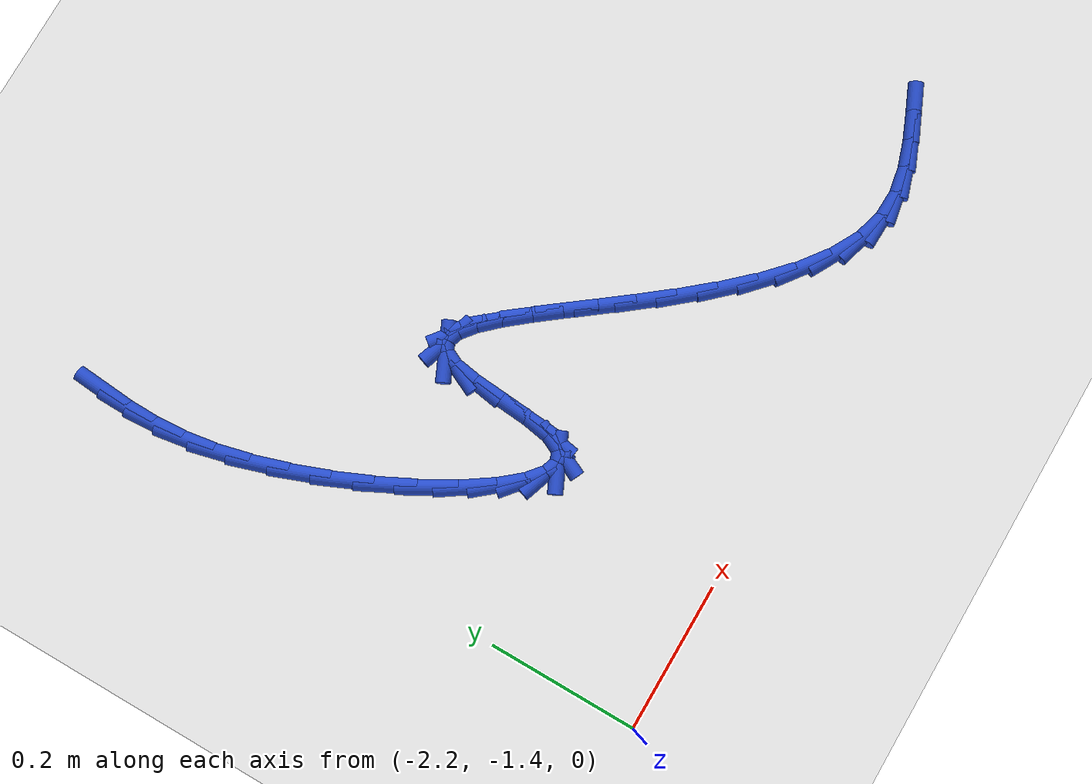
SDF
<sdf version="1.6">
 <world name="default">
  <model name="ground_plane">
   <static>1</static>
   <link name="link">
    <collision name="collision">
     <geometry><plane><normal>0 0 1</normal><size>100 100</size></plane></geometry>
     <surface><friction><ode><mu>100</mu><mu2>50</mu2></ode></friction></surface>
    </collision>
    <visual name="visual">
     <cast_shadows>0</cast_shadows>
     <geometry><plane><normal>0 0 1</normal><size>100 100</size></plane></geometry>
     <material>
      <script><uri>file://media/materials/scripts/gazebo.material</uri><name>Gazebo/WhiteGlow</name></script>
     </material>
    </visual>
   </link>
  </model>
  <model name="line">
   <link name="link_141">
    <pose>-2.172137675861249 -0.6205186769852667 0.01 0 1.57 1.4902348480147125</pose>
    <collision name="collision">
     <geometry><cylinder><radius>0.01</radius><length>0.08</length></cylinder></geometry>
    </collision>
    <visual name="visual">
     <material>
      <script><name>Gazebo/Blue</name><uri>file://media/materials/scripts/gazebo.material</uri></script>
     </material>
     <geometry><cylinder><radius>0.01</radius><length>0.08</length></cylinder></geometry>
    </visual>
   </link>
   <link name="link_142">
    <pose>-2.1751196417518637 -0.6574533510444338 0.01 0 1.57 1.55558572192446</pose>
    <collision name="collision">
     <geometry><cylinder><radius>0.01</radius><length>0.08</length></cylinder></geometry>
    </collision>
    <visual name="visual">
     <material>
      <script><name>Gazebo/Blue</name><uri>file://media/materials/scripts/gazebo.material</uri></script>
     </material>
     <geometry><cylinder><radius>0.01</radius><length>0.08</length></cylinder></geometry>
    </visual>
   </link>
   <link name="link_143">
    <pose>-2.1757201133477433 -0.6969274739612901 0.01 0 1.57 -1.5035221572952087</pose>
    <collision name="collision">
     <geometry><cylinder><radius>0.01</radius><length>0.08</length></cylinder></geometry>
    </collision>
    <visual name="visual">
     <material>
      <script><name>Gazebo/Blue</name><uri>file://media/materials/scripts/gazebo.material</uri></script>
     </material>
     <geometry><cylinder><radius>0.01</radius><length>0.08</length></cylinder></geometry>
    </visual>
   </link>
   <link name="link_144">
    <pose>-2.172856573671893 -0.7394284582755891 0.01 0 1.57 -1.4114819482657484</pose>
    <collision name="collision">
     <geometry><cylinder><radius>0.01</radius><length>0.08</length></cylinder></geometry>
    </collision>
    <visual name="visual">
     <material>
      <script><name>Gazebo/Blue</name><uri>file://media/materials/scripts/gazebo.material</uri></script>
     </material>
     <geometry><cylinder><radius>0.01</radius><length>0.08</length></cylinder></geometry>
    </visual>
   </link>
   <link name="link_145">
    <pose>-2.165466481775215 -0.7854221915384798 0.01 0 1.57 -1.3275369370938712</pose>
    <collision name="collision">
     <geometry><cylinder><radius>0.01</radius><length>0.08</length></cylinder></geometry>
    </collision>
    <visual name="visual">
     <material>
      <script><name>Gazebo/Blue</name><uri>file://media/materials/scripts/gazebo.material</uri></script>
     </material>
     <geometry><cylinder><radius>0.01</radius><length>0.08</length></cylinder></geometry>
    </visual>
   </link>
   <link name="link_146">
    <pose>-2.1532821601880765 -0.8345180633314336 0.01 0 1.57 -1.261373930025842</pose>
    <collision name="collision">
     <geometry><cylinder><radius>0.01</radius><length>0.08</length></cylinder></geometry>
    </collision>
    <visual name="visual">
     <material>
      <script><name>Gazebo/Blue</name><uri>file://media/materials/scripts/gazebo.material</uri></script>
     </material>
     <geometry><cylinder><radius>0.01</radius><length>0.08</length></cylinder></geometry>
    </visual>
   </link>
   <link name="link_147">
    <pose>-2.1370791978526342 -0.8852013009280331 0.01 0 1.57 -1.2056338508658233</pose>
    <collision name="collision">
     <geometry><cylinder><radius>0.01</radius><length>0.08</length></cylinder></geometry>
    </collision>
    <visual name="visual">
     <material>
      <script><name>Gazebo/Blue</name><uri>file://media/materials/scripts/gazebo.material</uri></script>
     </material>
     <geometry><cylinder><radius>0.01</radius><length>0.08</length></cylinder></geometry>
    </visual>
   </link>
   <link name="link_148">
    <pose>-2.1177039948867384 -0.9358808296584714 0.01 0 1.57 -1.1545198834848671</pose>
    <collision name="collision">
     <geometry><cylinder><radius>0.01</radius><length>0.08</length></cylinder></geometry>
    </collision>
    <visual name="visual">
     <material>
      <script><name>Gazebo/Blue</name><uri>file://media/materials/scripts/gazebo.material</uri></script>
     </material>
     <geometry><cylinder><radius>0.01</radius><length>0.08</length></cylinder></geometry>
    </visual>
   </link>
   <link name="link_149">
    <pose>-2.096002951408236 -0.9849655748529459 0.01 0 1.57 -1.1031298860709515</pose>
    <collision name="collision">
     <geometry><cylinder><radius>0.01</radius><length>0.08</length></cylinder></geometry>
    </collision>
    <visual name="visual">
     <material>
      <script><name>Gazebo/Blue</name><uri>file://media/materials/scripts/gazebo.material</uri></script>
     </material>
     <geometry><cylinder><radius>0.01</radius><length>0.08</length></cylinder></geometry>
    </visual>
   </link>
   <link name="link_150">
    <pose>-2.0728224675349756 -1.0308644618416527 0.01 0 1.57 -1.0458898799957554</pose>
    <collision name="collision">
     <geometry><cylinder><radius>0.01</radius><length>0.08</length></cylinder></geometry>
    </collision>
    <visual name="visual">
     <material>
      <script><name>Gazebo/Blue</name><uri>file://media/materials/scripts/gazebo.material</uri></script>
     </material>
     <geometry><cylinder><radius>0.01</radius><length>0.08</length></cylinder></geometry>
    </visual>
   </link>
   <link name="link_151">
    <pose>-2.049008943384805 -1.071986415954788 0.01 0 1.57 -0.9742597874984334</pose>
    <collision name="collision">
     <geometry><cylinder><radius>0.01</radius><length>0.08</length></cylinder></geometry>
    </collision>
    <visual name="visual">
     <material>
      <script><name>Gazebo/Blue</name><uri>file://media/materials/scripts/gazebo.material</uri></script>
     </material>
     <geometry><cylinder><radius>0.01</radius><length>0.08</length></cylinder></geometry>
    </visual>
   </link>
   <link name="link_152">
    <pose>-2.025408779075573 -1.1067403625225478 0.01 0 1.57 -0.8714210167375153</pose>
    <collision name="collision">
     <geometry><cylinder><radius>0.01</radius><length>0.08</length></cylinder></geometry>
    </collision>
    <visual name="visual">
     <material>
      <script><name>Gazebo/Blue</name><uri>file://media/materials/scripts/gazebo.material</uri></script>
     </material>
     <geometry><cylinder><radius>0.01</radius><length>0.08</length></cylinder></geometry>
    </visual>
   </link>
   <link name="link_153">
    <pose>-2.002868374725127 -1.1335352268751278 0.01 0 1.57 -0.6961524772560699</pose>
    <collision name="collision">
     <geometry><cylinder><radius>0.01</radius><length>0.08</length></cylinder></geometry>
    </collision>
    <visual name="visual">
     <material>
      <script><name>Gazebo/Blue</name><uri>file://media/materials/scripts/gazebo.material</uri></script>
     </material>
     <geometry><cylinder><radius>0.01</radius><length>0.08</length></cylinder></geometry>
    </visual>
   </link>
   <link name="link_154">
    <pose>-1.982234130451316 -1.1507799343427243 0.01 0 1.57 -0.32892623409315486</pose>
    <collision name="collision">
     <geometry><cylinder><radius>0.01</radius><length>0.08</length></cylinder></geometry>
    </collision>
    <visual name="visual">
     <material>
      <script><name>Gazebo/Blue</name><uri>file://media/materials/scripts/gazebo.material</uri></script>
     </material>
     <geometry><cylinder><radius>0.01</radius><length>0.08</length></cylinder></geometry>
    </visual>
   </link>
   <link name="link_155">
    <pose>-1.9643524463719872 -1.1568834102555332 0.01 0 1.57 0.4345299940131786</pose>
    <collision name="collision">
     <geometry><cylinder><radius>0.01</radius><length>0.08</length></cylinder></geometry>
    </collision>
    <visual name="visual">
     <material>
      <script><name>Gazebo/Blue</name><uri>file://media/materials/scripts/gazebo.material</uri></script>
     </material>
     <geometry><cylinder><radius>0.01</radius><length>0.08</length></cylinder></geometry>
    </visual>
   </link>
   <link name="link_156">
    <pose>-1.9500697226049897 -1.1502545799437502 0.01 0 1.57 1.1305768977068673</pose>
    <collision name="collision">
     <geometry><cylinder><radius>0.01</radius><length>0.08</length></cylinder></geometry>
    </collision>
    <visual name="visual">
     <material>
      <script><name>Gazebo/Blue</name><uri>file://media/materials/scripts/gazebo.material</uri></script>
     </material>
     <geometry><cylinder><radius>0.01</radius><length>0.08</length></cylinder></geometry>
    </visual>
   </link>
   <link name="link_157">
    <pose>-1.9402187455461817 -1.12934171298764 0.01 0 1.57 1.4056873610664977</pose>
    <collision name="collision">
     <geometry><cylinder><radius>0.01</radius><length>0.08</length></cylinder></geometry>
    </collision>
    <visual name="visual">
     <material>
      <script><name>Gazebo/Blue</name><uri>file://media/materials/scripts/gazebo.material</uri></script>
     </material>
     <geometry><cylinder><radius>0.01</radius><length>0.08</length></cylinder></geometry>
    </visual>
   </link>
   <link name="link_158">
    <pose>-1.9345949945116256 -1.0955909416514154 0.01 0 1.57 1.4874122795418692</pose>
    <collision name="collision">
     <geometry><cylinder><radius>0.01</radius><length>0.08</length></cylinder></geometry>
    </collision>
    <visual name="visual">
     <material>
      <script><name>Gazebo/Blue</name><uri>file://media/materials/scripts/gazebo.material</uri></script>
     </material>
     <geometry><cylinder><radius>0.01</radius><length>0.08</length></cylinder></geometry>
    </visual>
   </link>
   <link name="link_159">
    <pose>-1.931244617926411 -1.0555040407395824 0.01 0 1.57 1.4898477324806103</pose>
    <collision name="collision">
     <geometry><cylinder><radius>0.01</radius><length>0.08</length></cylinder></geometry>
    </collision>
    <visual name="visual">
     <material>
      <script><name>Gazebo/Blue</name><uri>file://media/materials/scripts/gazebo.material</uri></script>
     </material>
     <geometry><cylinder><radius>0.01</radius><length>0.08</length></cylinder></geometry>
    </visual>
   </link>
   <link name="link_160">
    <pose>-1.9280454369310964 -1.016069258247457 0.01 0 1.57 1.4095951179328399</pose>
    <collision name="collision">
     <geometry><cylinder><radius>0.01</radius><length>0.08</length></cylinder></geometry>
    </collision>
    <visual name="visual">
     <material>
      <script><name>Gazebo/Blue</name><uri>file://media/materials/scripts/gazebo.material</uri></script>
     </material>
     <geometry><cylinder><radius>0.01</radius><length>0.08</length></cylinder></geometry>
    </visual>
   </link>
   <link name="link_161">
    <pose>-1.9228752755499186 -0.9842748319046379 0.01 0 1.57 1.1287271240300623</pose>
    <collision name="collision">
     <geometry><cylinder><radius>0.01</radius><length>0.08</length></cylinder></geometry>
    </collision>
    <visual name="visual">
     <material>
      <script><name>Gazebo/Blue</name><uri>file://media/materials/scripts/gazebo.material</uri></script>
     </material>
     <geometry><cylinder><radius>0.01</radius><length>0.08</length></cylinder></geometry>
    </visual>
   </link>
   <link name="link_162">
    <pose>-1.9140360023136331 -0.9655994221181875 0.01 0 1.57 0.429674188349198</pose>
    <collision name="collision">
     <geometry><cylinder><radius>0.01</radius><length>0.08</length></cylinder></geometry>
    </collision>
    <visual name="visual">
     <material>
      <script><name>Gazebo/Blue</name><uri>file://media/materials/scripts/gazebo.material</uri></script>
     </material>
     <geometry><cylinder><radius>0.01</radius><length>0.08</length></cylinder></geometry>
    </visual>
   </link>
   <link name="link_163">
    <pose>-1.9014302298410153 -0.9598231200712616 0.01 0 1.57 -0.3325867141731276</pose>
    <collision name="collision">
     <geometry><cylinder><radius>0.01</radius><length>0.08</length></cylinder></geometry>
    </collision>
    <visual name="visual">
     <material>
      <script><name>Gazebo/Blue</name><uri>file://media/materials/scripts/gazebo.material</uri></script>
     </material>
     <geometry><cylinder><radius>0.01</radius><length>0.08</length></cylinder></geometry>
    </visual>
   </link>
   <link name="link_164">
    <pose>-1.8853382263490615 -0.9653815818275095 0.01 0 1.57 -0.6712717642905457</pose>
    <collision name="collision">
     <geometry><cylinder><radius>0.01</radius><length>0.08</length></cylinder></geometry>
    </collision>
    <visual name="visual">
     <material>
      <script><name>Gazebo/Blue</name><uri>file://media/materials/scripts/gazebo.material</uri></script>
     </material>
     <geometry><cylinder><radius>0.01</radius><length>0.08</length></cylinder></geometry>
    </visual>
   </link>
   <link name="link_165">
    <pose>-1.8660402600547688 -0.9807104634505815 0.01 0 1.57 -0.8140471467807898</pose>
    <collision name="collision">
     <geometry><cylinder><radius>0.01</radius><length>0.08</length></cylinder></geometry>
    </collision>
    <visual name="visual">
     <material>
      <script><name>Gazebo/Blue</name><uri>file://media/materials/scripts/gazebo.material</uri></script>
     </material>
     <geometry><cylinder><radius>0.01</radius><length>0.08</length></cylinder></geometry>
    </visual>
   </link>
   <link name="link_166">
    <pose>-1.8438165991751343 -1.0042454210041278 0.01 0 1.57 -0.881522612423339</pose>
    <collision name="collision">
     <geometry><cylinder><radius>0.01</radius><length>0.08</length></cylinder></geometry>
    </collision>
    <visual name="visual">
     <material>
      <script><name>Gazebo/Blue</name><uri>file://media/materials/scripts/gazebo.material</uri></script>
     </material>
     <geometry><cylinder><radius>0.01</radius><length>0.08</length></cylinder></geometry>
    </visual>
   </link>
   <link name="link_167">
    <pose>-1.8189475119271539 -1.034422110551798 0.01 0 1.57 -0.9130416827570932</pose>
    <collision name="collision">
     <geometry><cylinder><radius>0.01</radius><length>0.08</length></cylinder></geometry>
    </collision>
    <visual name="visual">
     <material>
      <script><name>Gazebo/Blue</name><uri>file://media/materials/scripts/gazebo.material</uri></script>
     </material>
     <geometry><cylinder><radius>0.01</radius><length>0.08</length></cylinder></geometry>
    </visual>
   </link>
   <link name="link_168">
    <pose>-1.791713266527826 -1.0696761881572427 0.01 0 1.57 -0.9232825965125053</pose>
    <collision name="collision">
     <geometry><cylinder><radius>0.01</radius><length>0.08</length></cylinder></geometry>
    </collision>
    <visual name="visual">
     <material>
      <script><name>Gazebo/Blue</name><uri>file://media/materials/scripts/gazebo.material</uri></script>
     </material>
     <geometry><cylinder><radius>0.01</radius><length>0.08</length></cylinder></geometry>
    </visual>
   </link>
   <link name="link_169">
    <pose>-1.7623941311941458 -1.108443309884112 0.01 0 1.57 -0.9181337028674869</pose>
    <collision name="collision">
     <geometry><cylinder><radius>0.01</radius><length>0.08</length></cylinder></geometry>
    </collision>
    <visual name="visual">
     <material>
      <script><name>Gazebo/Blue</name><uri>file://media/materials/scripts/gazebo.material</uri></script>
     </material>
     <geometry><cylinder><radius>0.01</radius><length>0.08</length></cylinder></geometry>
    </visual>
   </link>
   <link name="link_170">
    <pose>-1.7312703741431097 -1.149159131796057 0.01 0 1.57 -0.8995072688064732</pose>
    <collision name="collision">
     <geometry><cylinder><radius>0.01</radius><length>0.08</length></cylinder></geometry>
    </collision>
    <visual name="visual">
     <material>
      <script><name>Gazebo/Blue</name><uri>file://media/materials/scripts/gazebo.material</uri></script>
     </material>
     <geometry><cylinder><radius>0.01</radius><length>0.08</length></cylinder></geometry>
    </visual>
   </link>
   <link name="link_171">
    <pose>-1.6986222635917172 -1.1902593099567258 0.01 0 1.57 -0.8668837684741256</pose>
    <collision name="collision">
     <geometry><cylinder><radius>0.01</radius><length>0.08</length></cylinder></geometry>
    </collision>
    <visual name="visual">
     <material>
      <script><name>Gazebo/Blue</name><uri>file://media/materials/scripts/gazebo.material</uri></script>
     </material>
     <geometry><cylinder><radius>0.01</radius><length>0.08</length></cylinder></geometry>
    </visual>
   </link>
   <link name="link_172">
    <pose>-1.6647300677569636 -1.2301795004297695 0.01 0 1.57 -0.8175928618068733</pose>
    <collision name="collision">
     <geometry><cylinder><radius>0.01</radius><length>0.08</length></cylinder></geometry>
    </collision>
    <visual name="visual">
     <material>
      <script><name>Gazebo/Blue</name><uri>file://media/materials/scripts/gazebo.material</uri></script>
     </material>
     <geometry><cylinder><radius>0.01</radius><length>0.08</length></cylinder></geometry>
    </visual>
   </link>
   <link name="link_173">
    <pose>-1.6298740548558455 -1.2673553592788376 0.01 0 1.57 -0.7463520106007729</pose>
    <collision name="collision">
     <geometry><cylinder><radius>0.01</radius><length>0.08</length></cylinder></geometry>
    </collision>
    <visual name="visual">
     <material>
      <script><name>Gazebo/Blue</name><uri>file://media/materials/scripts/gazebo.material</uri></script>
     </material>
     <geometry><cylinder><radius>0.01</radius><length>0.08</length></cylinder></geometry>
    </visual>
   </link>
   <link name="link_174">
    <pose>-1.59433449310536 -1.3002225425675813 0.01 0 1.57 -0.6441601764402802</pose>
    <collision name="collision">
     <geometry><cylinder><radius>0.01</radius><length>0.08</length></cylinder></geometry>
    </collision>
    <visual name="visual">
     <material>
      <script><name>Gazebo/Blue</name><uri>file://media/materials/scripts/gazebo.material</uri></script>
     </material>
     <geometry><cylinder><radius>0.01</radius><length>0.08</length></cylinder></geometry>
    </visual>
   </link>
   <link name="link_175">
    <pose>-1.5583916507225044 -1.3272167063596503 0.01 0 1.57 -0.4968755910882268</pose>
    <collision name="collision">
     <geometry><cylinder><radius>0.01</radius><length>0.08</length></cylinder></geometry>
    </collision>
    <visual name="visual">
     <material>
      <script><name>Gazebo/Blue</name><uri>file://media/materials/scripts/gazebo.material</uri></script>
     </material>
     <geometry><cylinder><radius>0.01</radius><length>0.08</length></cylinder></geometry>
    </visual>
   </link>
   <link name="link_176">
    <pose>-1.522325795924275 -1.3467735067186946 0.01 0 1.57 -0.2861320534358124</pose>
    <collision name="collision">
     <geometry><cylinder><radius>0.01</radius><length>0.08</length></cylinder></geometry>
    </collision>
    <visual name="visual">
     <material>
      <script><name>Gazebo/Blue</name><uri>file://media/materials/scripts/gazebo.material</uri></script>
     </material>
     <geometry><cylinder><radius>0.01</radius><length>0.08</length></cylinder></geometry>
    </visual>
   </link>
   <link name="link_177">
    <pose>-1.4864163160365373 -1.3573382636585707 0.01 0 1.57 -0.03365829769849666</pose>
    <collision name="collision">
     <geometry><cylinder><radius>0.01</radius><length>0.08</length></cylinder></geometry>
    </collision>
    <visual name="visual">
     <material>
      <script><name>Gazebo/Blue</name><uri>file://media/materials/scripts/gazebo.material</uri></script>
     </material>
     <geometry><cylinder><radius>0.01</radius><length>0.08</length></cylinder></geometry>
    </visual>
   </link>
   <link name="link_178">
    <pose>-1.450835036482932 -1.3585363214114088 0.01 0 1.57 0.1751661744725437</pose>
    <collision name="collision">
     <geometry><cylinder><radius>0.01</radius><length>0.08</length></cylinder></geometry>
    </collision>
    <visual name="visual">
     <material>
      <script><name>Gazebo/Blue</name><uri>file://media/materials/scripts/gazebo.material</uri></script>
     </material>
     <geometry><cylinder><radius>0.01</radius><length>0.08</length></cylinder></geometry>
    </visual>
   </link>
   <link name="link_179">
    <pose>-1.4155443555041178 -1.3522905769929574 0.01 0 1.57 0.31698388109088965</pose>
    <collision name="collision">
     <geometry><cylinder><radius>0.01</radius><length>0.08</length></cylinder></geometry>
    </collision>
    <visual name="visual">
     <material>
      <script><name>Gazebo/Blue</name><uri>file://media/materials/scripts/gazebo.material</uri></script>
     </material>
     <geometry><cylinder><radius>0.01</radius><length>0.08</length></cylinder></geometry>
    </visual>
   </link>
   <link name="link_180">
    <pose>-1.3804825359259632 -1.3407887086601304 0.01 0 1.57 0.3955443747018203</pose>
    <collision name="collision">
     <geometry><cylinder><radius>0.01</radius><length>0.08</length></cylinder></geometry>
    </collision>
    <visual name="visual">
     <material>
      <script><name>Gazebo/Blue</name><uri>file://media/materials/scripts/gazebo.material</uri></script>
     </material>
     <geometry><cylinder><radius>0.01</radius><length>0.08</length></cylinder></geometry>
    </visual>
   </link>
   <link name="link_181">
    <pose>-1.3455878405743347 -1.3262183946698407 0.01 0 1.57 0.417964264040188</pose>
    <collision name="collision">
     <geometry><cylinder><radius>0.01</radius><length>0.08</length></cylinder></geometry>
    </collision>
    <visual name="visual">
     <material>
      <script><name>Gazebo/Blue</name><uri>file://media/materials/scripts/gazebo.material</uri></script>
     </material>
     <geometry><cylinder><radius>0.01</radius><length>0.08</length></cylinder></geometry>
    </visual>
   </link>
  </model>
 </world>
</sdf>
